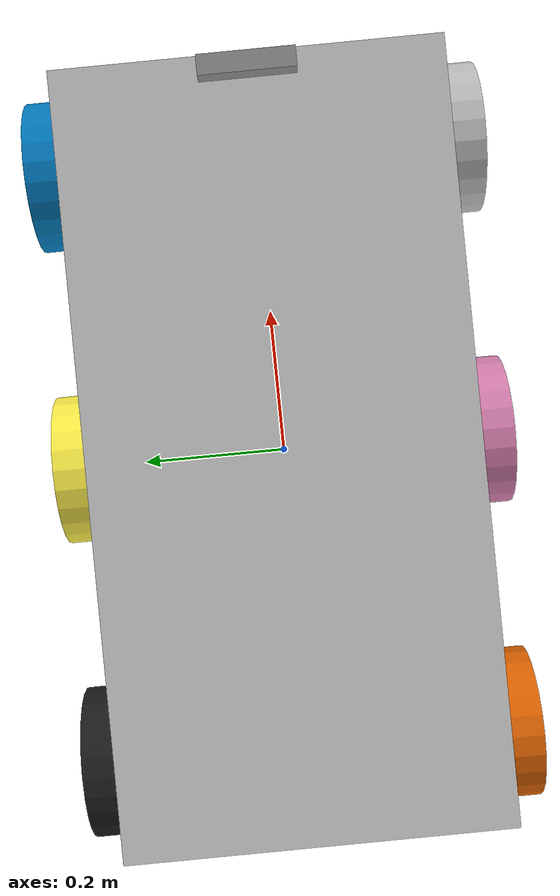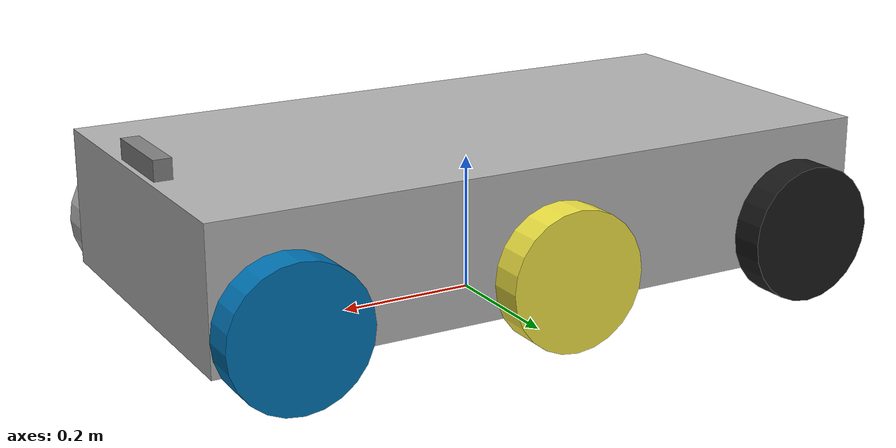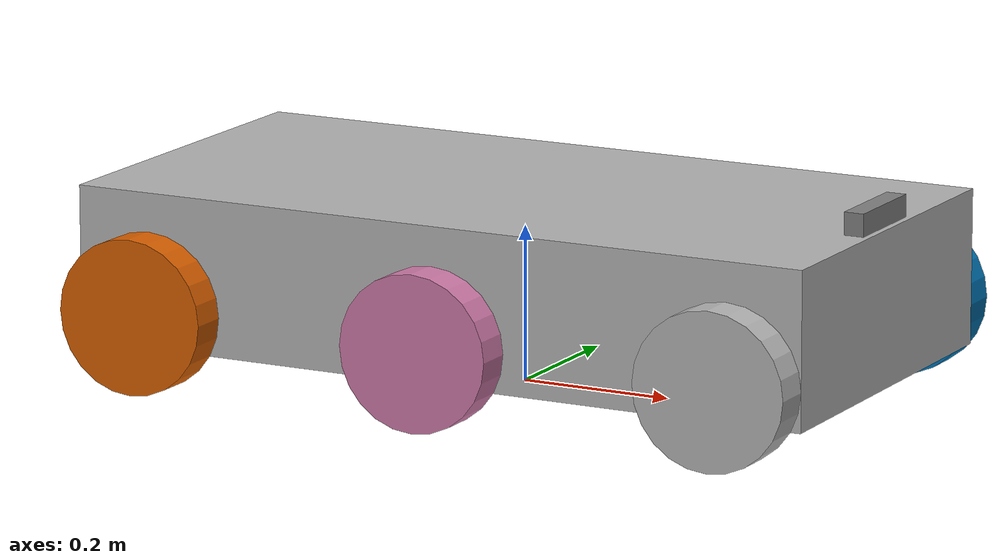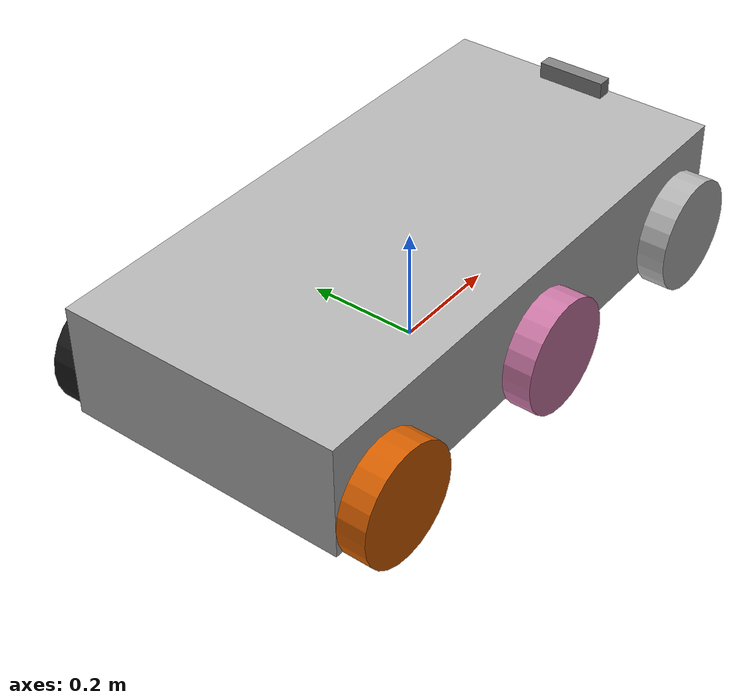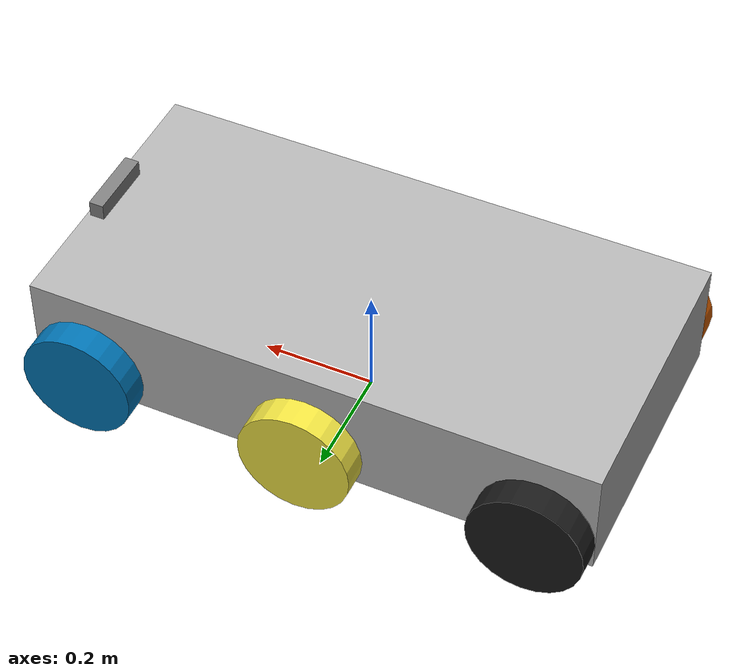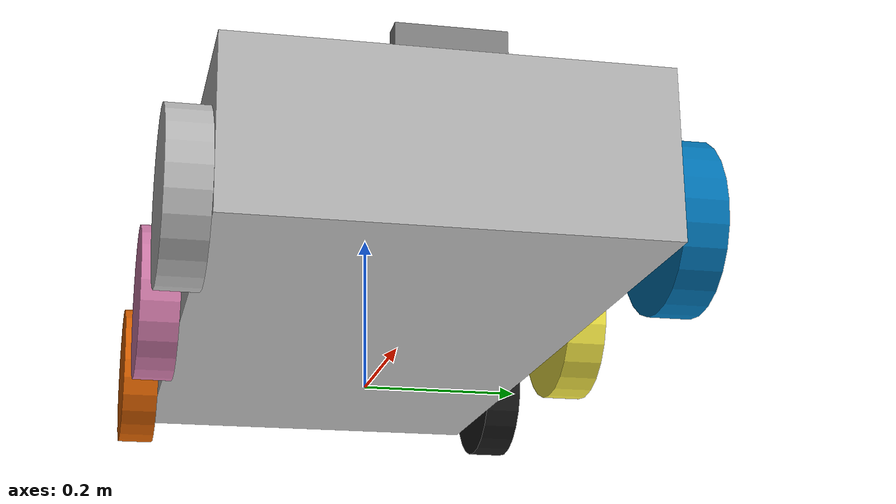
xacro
<?xml version="1.0"?>
<robot name="six_wheel_rover_camera" xmlns:xacro="http://www.ros.org/wiki/xacro">

  <!-- 1. INCLUDES                                                        -->
  <xacro:include filename="six_wheel_rover.xacro"/>
  <xacro:include filename="camera.xacro"/>

  <!-- 2. INSTANTIATION                                                   -->
  <xacro:six_wheel_rover />
  <xacro:realsense_d455 parent_link="base_link">
    <origin xyz="0.48 0 0.265" rpy="0 0 0"/>
  </xacro:realsense_d455>

</robot>

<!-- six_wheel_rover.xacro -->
<robot xmlns:xacro="http://www.ros.org/wiki/xacro">

  <!-- 1. MACRO DEFINITION -->
  <!-- We define this as a macro so it can be called by other files -->
  <xacro:macro name="six_wheel_rover">

    <!-- 2. BASE FOOTPRINT (Dummy Root) -->
    <!-- Fixes the KDL warning about root link having inertia -->
    <link name="base_footprint"/>

    <joint name="base_joint" type="fixed">
      <parent link="base_footprint"/>
      <child link="base_link"/>
      <origin xyz="0 0 0" rpy="0 0 0"/>
    </joint>

    <!-- === Base (Chassis) === -->
    <link name="base_link">
      <inertial>
        <origin xyz="0 0 0.15" rpy="0 0 0"/>
        <mass value="10.0"/>
        <inertia ixx="0.5" ixy="0.0" iyy="0.5" iyz="0.0" izz="0.01" ixz="0.0"/>
      </inertial>
      <visual>
        <origin xyz="0 0 0.15" rpy="0 0 0"/>
        <geometry>
          <box size="1.0 0.5 0.2"/>
        </geometry>
        <material name="gray">
          <color rgba="0.7 0.7 0.7 1"/>
        </material>
      </visual>
      <collision>
        <origin xyz="0 0 0.15" rpy="0 0 0"/>
        <geometry>
          <box size="1.0 0.45 0.2"/>
        </geometry>
      </collision>
    </link>

    <!-- === Wheels === -->
    <!-- LEFT WHEELS -->
    <link name="left_front_wheel">
      <inertial>
        <mass value="1.0"/>
        <inertia ixx="0.01" ixy="0.0" iyy="0.01" iyz="0.0" izz="0.01" ixz="0.0"/>
        <origin xyz="0 0 0" rpy="0 0 0"/>
      </inertial>
      <visual>
        <origin xyz="0 0 0" rpy="1.5708 0 0"/>
        <geometry><cylinder radius="0.1" length="0.05"/></geometry>
        <material name="black"><color rgba="0.1 0.1 0.1 1"/></material>
      </visual>
      <collision>
        <origin xyz="0 0 0" rpy="1.5708 0 0"/>
        <geometry><cylinder radius="0.1" length="0.05"/></geometry>
      </collision>
    </link>

    <link name="left_middle_wheel">
      <inertial>
        <mass value="1.0"/>
        <inertia ixx="0.01" ixy="0.0" iyy="0.01" iyz="0.0" izz="0.01" ixz="0.0"/>
        <origin xyz="0 0 0" rpy="0 0 0"/>
      </inertial>
      <visual>
        <origin xyz="0 0 0" rpy="1.5708 0 0"/>
        <geometry><cylinder radius="0.1" length="0.05"/></geometry>
      </visual>
      <collision>
        <origin xyz="0 0 0" rpy="1.5708 0 0"/>
        <geometry><cylinder radius="0.1" length="0.05"/></geometry>
      </collision>
    </link>

    <link name="left_rear_wheel">
      <inertial>
        <mass value="1.0"/>
        <inertia ixx="0.01" ixy="0.0" iyy="0.01" iyz="0.0" izz="0.01" ixz="0.0"/>
        <origin xyz="0 0 0" rpy="0 0 0"/>
      </inertial>
      <visual>
        <origin xyz="0 0 0" rpy="1.5708 0 0"/>
        <geometry><cylinder radius="0.1" length="0.05"/></geometry>
      </visual>
      <collision>
        <origin xyz="0 0 0" rpy="1.5708 0 0"/>
        <geometry><cylinder radius="0.1" length="0.05"/></geometry>
      </collision>
    </link>

    <!-- RIGHT WHEELS -->
    <link name="right_front_wheel">
      <inertial>
        <mass value="1.0"/>
        <inertia ixx="0.01" ixy="0.0" iyy="0.01" iyz="0.0" izz="0.01" ixz="0.0"/>
        <origin xyz="0 0 0" rpy="0 0 0"/>
      </inertial>
      <visual>
        <origin xyz="0 0 0" rpy="1.5708 0 0"/>
        <geometry><cylinder radius="0.1" length="0.05"/></geometry>
      </visual>
      <collision>
        <origin xyz="0 0 0" rpy="1.5708 0 0"/>
        <geometry><cylinder radius="0.1" length="0.05"/></geometry>
      </collision>
    </link>

    <link name="right_middle_wheel">
      <inertial>
        <mass value="1.0"/>
        <inertia ixx="0.01" ixy="0.0" iyy="0.01" iyz="0.0" izz="0.01" ixz="0.0"/>
        <origin xyz="0 0 0" rpy="0 0 0"/>
      </inertial>
      <visual>
        <origin xyz="0 0 0" rpy="1.5708 0 0"/>
        <geometry><cylinder radius="0.1" length="0.05"/></geometry>
      </visual>
      <collision>
        <origin xyz="0 0 0" rpy="1.5708 0 0"/>
        <geometry><cylinder radius="0.1" length="0.05"/></geometry>
      </collision>
    </link>

    <link name="right_rear_wheel">
      <inertial>
        <mass value="1.0"/>
        <inertia ixx="0.01" ixy="0.0" iyy="0.01" iyz="0.0" izz="0.01" ixz="0.0"/>
        <origin xyz="0 0 0" rpy="0 0 0"/>
      </inertial>
      <visual>
        <origin xyz="0 0 0" rpy="1.5708 0 0"/>
        <geometry><cylinder radius="0.1" length="0.05"/></geometry>
      </visual>
      <collision>
        <origin xyz="0 0 0" rpy="1.5708 0 0"/>
        <geometry><cylinder radius="0.1" length="0.05"/></geometry>
      </collision>
    </link>

    <!-- === Joints === -->
    <joint name="left_front_joint" type="continuous">
      <parent link="base_link"/>
      <child link="left_front_wheel"/>
      <origin xyz="-0.4 0.275 0.1" rpy="0 0 0"/>
      <axis xyz="0 1 0"/>
    </joint>

    <joint name="left_middle_joint" type="continuous">
      <parent link="base_link"/>
      <child link="left_middle_wheel"/>
      <origin xyz="0.0 0.275 0.1" rpy="0 0 0"/>
      <axis xyz="0 1 0"/>
    </joint>

    <joint name="left_rear_joint" type="continuous">
      <parent link="base_link"/>
      <child link="left_rear_wheel"/>
      <origin xyz="0.4 0.275 0.1" rpy="0 0 0"/>
      <axis xyz="0 1 0"/>
    </joint>

    <joint name="right_front_joint" type="continuous">
      <parent link="base_link"/>
      <child link="right_front_wheel"/>
      <origin xyz="-0.4 -0.275 0.1" rpy="0 0 0"/>
      <axis xyz="0 1 0"/>
    </joint>

    <joint name="right_middle_joint" type="continuous">
      <parent link="base_link"/>
      <child link="right_middle_wheel"/>
      <origin xyz="0.0 -0.275 0.1" rpy="0 0 0"/>
      <axis xyz="0 1 0"/>
    </joint>

    <joint name="right_rear_joint" type="continuous">
      <parent link="base_link"/>
      <child link="right_rear_wheel"/>
      <origin xyz="0.4 -0.275 0.1" rpy="0 0 0"/>
      <axis xyz="0 1 0"/>
    </joint>

    <!-- === ROS2 Control === -->
    <ros2_control name="SixWheelSystem" type="system">
      <hardware>
        <plugin>gz_ros2_control/GazeboSimSystem</plugin>
      </hardware>
      <joint name="left_front_joint">
        <command_interface name="velocity"/>
        <state_interface name="position"/>
        <state_interface name="velocity"/>
      </joint>
      <joint name="left_middle_joint">
        <command_interface name="velocity"/>
        <state_interface name="position"/>
        <state_interface name="velocity"/>
      </joint>
      <joint name="left_rear_joint">
        <command_interface name="velocity"/>
        <state_interface name="position"/>
        <state_interface name="velocity"/>
      </joint>
      <joint name="right_front_joint">
        <command_interface name="velocity"/>
        <state_interface name="position"/>
        <state_interface name="velocity"/>
      </joint>
      <joint name="right_middle_joint">
        <command_interface name="velocity"/>
        <state_interface name="position"/>
        <state_interface name="velocity"/>
      </joint>
      <joint name="right_rear_joint">
        <command_interface name="velocity"/>
        <state_interface name="position"/>
        <state_interface name="velocity"/>
      </joint>
    </ros2_control>

    <gazebo>
      <plugin name="gz_ros2_control::GazeboSimROS2ControlPlugin" filename="libgz_ros2_control-system.so">
        <parameters>$(find six_wheel_rover)/config/six_wheel_rover_controller.yaml</parameters>
      </plugin>
      <plugin
        filename="libgz-sim-pose-publisher-system.so"
        name="gz::sim::systems::PosePublisher">
        <publish_link_pose>false</publish_link_pose>
        <use_pose_vector_msg>true</use_pose_vector_msg>
        <publish_nested_model_pose>true</publish_nested_model_pose>
        <update_frequency>100</update_frequency>
      </plugin>
    </gazebo>

  </xacro:macro>

</robot>

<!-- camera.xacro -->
<robot xmlns:xacro="http://www.ros.org/wiki/xacro">

  <!-- Intel RealSense D455 Camera Macro for Gazebo Harmonic -->
  <xacro:macro name="realsense_d455" params="parent_link *origin">

    <!-- Camera properties -->
    <xacro:property name="d455_cam_width" value="0.124"/>
    <xacro:property name="d455_cam_height" value="0.029"/>
    <xacro:property name="d455_cam_depth" value="0.026"/>
    <xacro:property name="d455_cam_mass" value="0.116"/>

    <!-- Camera Link -->
    <link name="camera_link">
      <visual>
        <origin xyz="0 0 0" rpy="0 0 0"/>
        <geometry>
          <box size="${d455_cam_depth} ${d455_cam_width} ${d455_cam_height}"/>
        </geometry>
        <material name="camera_material">
          <color rgba="0.5 0.5 0.5 1.0"/>
        </material>
      </visual>
      <collision>
        <origin xyz="0 0 0" rpy="0 0 0"/>
        <geometry>
          <box size="${d455_cam_depth} ${d455_cam_width} ${d455_cam_height}"/>
        </geometry>
      </collision>
      <inertial>
        <mass value="${d455_cam_mass}"/>
        <origin xyz="0 0 0" rpy="0 0 0"/>
        <inertia ixx="1e-6" ixy="0" ixz="0" iyy="1e-6" iyz="0" izz="1e-6"/>
      </inertial>
    </link>

    <!-- Joint connecting camera to parent -->
    <joint name="camera_joint" type="fixed">
      <parent link="${parent_link}"/>
      <child link="camera_link"/>
      <xacro:insert_block name="origin"/>
    </joint>

    <!-- Optical frames for ROS conventions -->
    <link name="camera_depth_frame"/>
    <joint name="camera_depth_joint" type="fixed">
      <parent link="camera_link"/>
      <child link="camera_depth_frame"/>
      <origin xyz="0 0 0" rpy="${-pi/2} 0 ${-pi/2}"/>
    </joint>

    <link name="camera_color_frame"/>
    <joint name="camera_color_joint" type="fixed">
      <parent link="camera_link"/>
      <child link="camera_color_frame"/>
      <origin xyz="0 0 0" rpy="${-pi/2} 0 ${-pi/2}"/>
    </joint>

    <!-- Gazebo Harmonic Sensor Configuration -->
    <gazebo reference="camera_link">
      <!-- RGB Camera -->
      <sensor name="d455_color" type="camera">
        <update_rate>30</update_rate>
        <topic>/camera/image_raw</topic>
        <always_on>true</always_on>
        <visualize>true</visualize>
        <camera>
          <horizontal_fov>1.5009</horizontal_fov>
          <image>
            <width>1280</width>
            <height>720</height>
            <format>R8G8B8</format>
          </image>
          <clip>
            <near>0.1</near>
            <far>10.0</far>
          </clip>
        </camera>
      </sensor>

      <!-- Depth Camera -->
      <sensor name="d455_depth" type="depth_camera">
        <update_rate>30</update_rate>
        <topic>/camera/depth_image</topic>
        <always_on>true</always_on>
        <visualize>true</visualize>
        <camera>
          <horizontal_fov>1.5009</horizontal_fov>
          <image>
            <width>1280</width>
            <height>720</height>
            <format>R_FLOAT32</format>
          </image>
          <clip>
            <near>0.1</near>
            <far>10.0</far>
          </clip>
        </camera>
      </sensor>
    </gazebo>

  </xacro:macro>

</robot>
